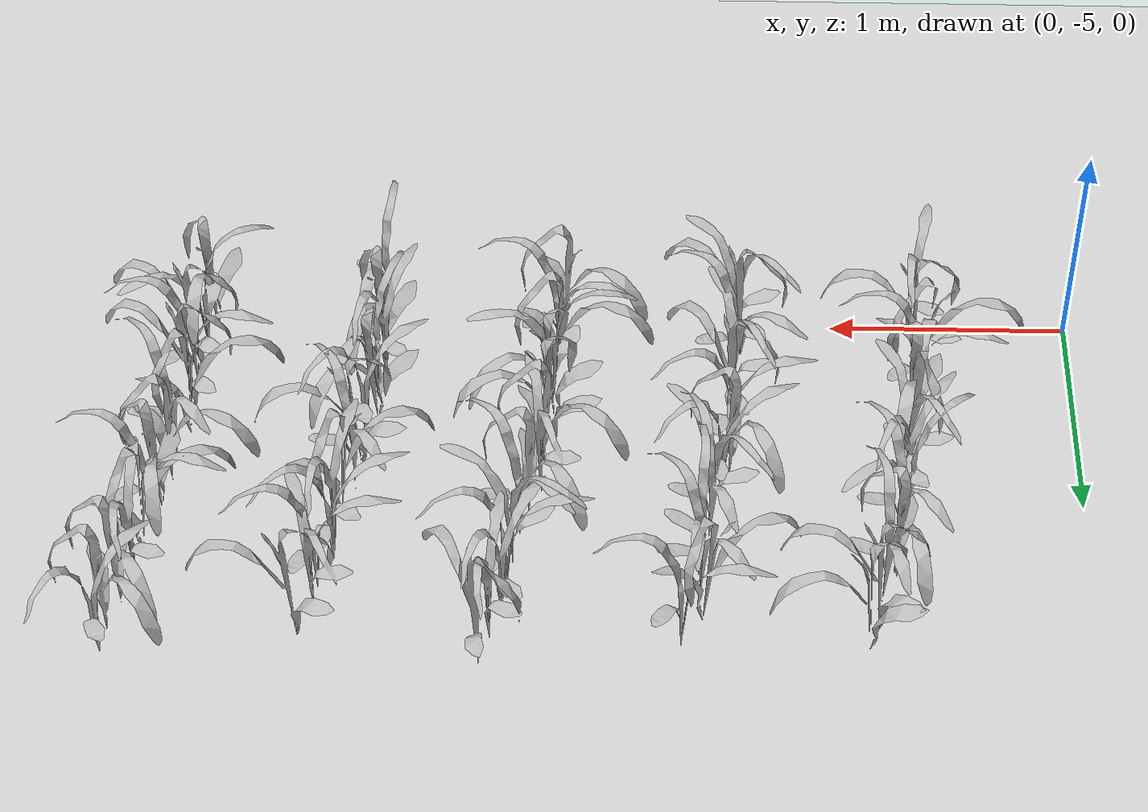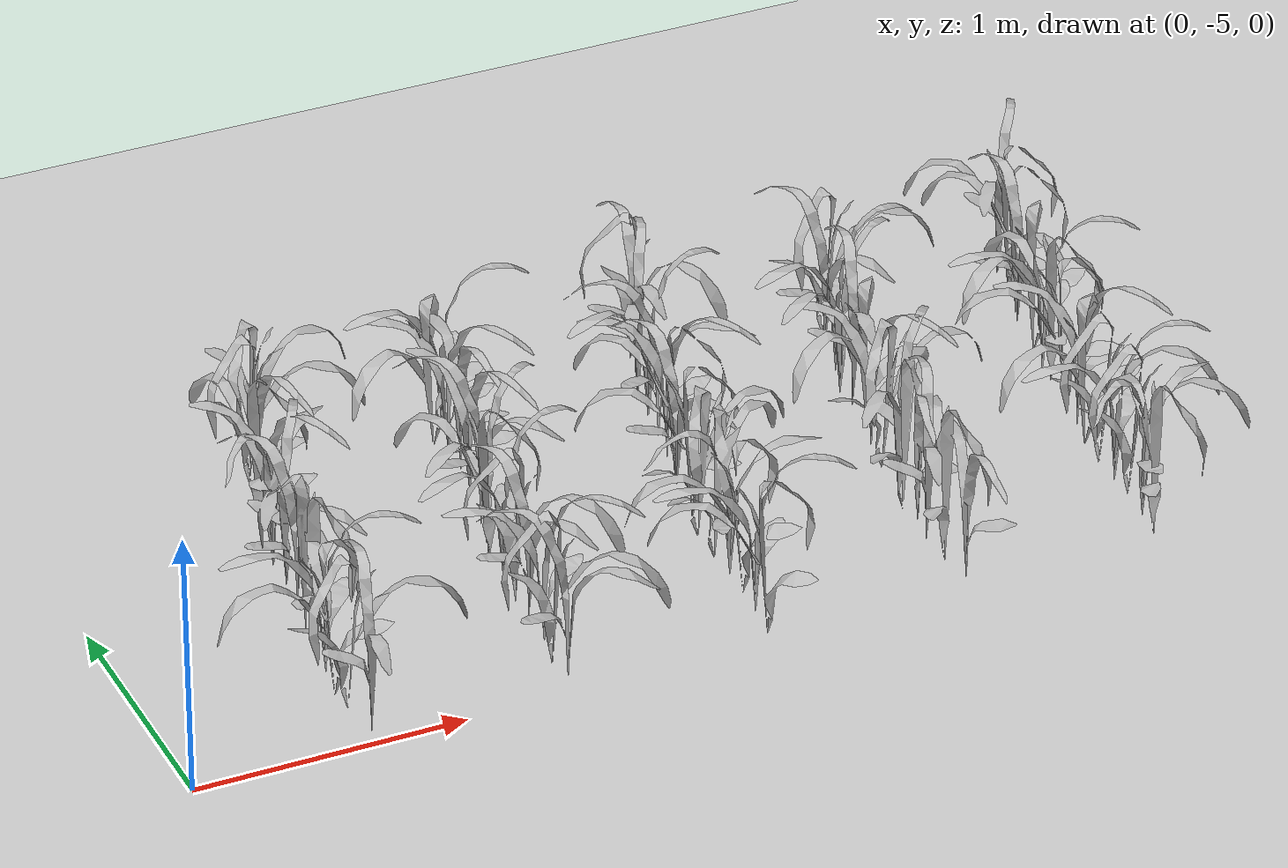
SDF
<sdf version="1.7">
 <world name="default">
  <model name="maize_02_0477">
   <pose>0.674474 -4.93886 1e-06 0.000156 3e-06 0.414563</pose>
   <link name="maize_02_link">
    <inertial>
     <pose>0 0 0.01 0 -0 0</pose>
     <mass>0.3</mass>
     <inertia>
      <ixx>0.00334167</ixx>
      <ixy>0</ixy>
      <ixz>0</ixz>
      <iyy>0.00334167</iyy>
      <iyz>0</iyz>
      <izz>1.66667e-05</izz>
     </inertia>
     <pose>0 0 0.1 0 -0 0</pose>
    </inertial>
    <visual name="visual">
     <geometry>
      <mesh><uri>model://maize_02/meshes/maize_02.dae</uri><scale>0.683166 0.683166 0.683166</scale></mesh>
     </geometry>
    </visual>
   </link>
   <static>0</static>
  </model>
  <model name="maize_01_0478">
   <pose>0.653253 -4.77808 -0 2.8e-05 5e-06 0.561854</pose>
   <link name="maize_01_link">
    <inertial>
     <pose>0 0 0.01 0 -0 0</pose>
     <mass>0.3</mass>
     <inertia>
      <ixx>0.00334167</ixx>
      <ixy>0</ixy>
      <ixz>0</ixz>
      <iyy>0.00334167</iyy>
      <iyz>0</iyz>
      <izz>1.66667e-05</izz>
     </inertia>
     <pose>0 0 0.1 0 -0 0</pose>
    </inertial>
    <visual name="visual">
     <geometry>
      <mesh><uri>model://maize_01/meshes/maize_01.dae</uri><scale>0.683166 0.683166 0.683166</scale></mesh>
     </geometry>
    </visual>
   </link>
   <static>0</static>
  </model>
  <model name="maize_01_0479">
   <pose>0.643552 -4.68192 -1e-06 -7.9e-05 6e-06 -2.36254</pose>
   <link name="maize_01_link">
    <inertial>
     <pose>0 0 0.01 0 -0 0</pose>
     <mass>0.3</mass>
     <inertia>
      <ixx>0.00334167</ixx>
      <ixy>0</ixy>
      <ixz>0</ixz>
      <iyy>0.00334167</iyy>
      <iyz>0</iyz>
      <izz>1.66667e-05</izz>
     </inertia>
     <pose>0 0 0.1 0 -0 0</pose>
    </inertial>
    <visual name="visual">
     <geometry>
      <mesh><uri>model://maize_01/meshes/maize_01.dae</uri><scale>0.683166 0.683166 0.683166</scale></mesh>
     </geometry>
    </visual>
   </link>
   <static>0</static>
  </model>
  <model name="maize_02_0480">
   <pose>0.665992 -4.54618 -0 -6e-06 -4.8e-05 -1.18139</pose>
   <link name="maize_02_link">
    <inertial>
     <pose>0 0 0.01 0 -0 0</pose>
     <mass>0.3</mass>
     <inertia>
      <ixx>0.00334167</ixx>
      <ixy>0</ixy>
      <ixz>0</ixz>
      <iyy>0.00334167</iyy>
      <iyz>0</iyz>
      <izz>1.66667e-05</izz>
     </inertia>
     <pose>0 0 0.1 0 -0 0</pose>
    </inertial>
    <visual name="visual">
     <geometry>
      <mesh><uri>model://maize_02/meshes/maize_02.dae</uri><scale>0.683166 0.683166 0.683166</scale></mesh>
     </geometry>
    </visual>
   </link>
   <static>0</static>
  </model>
  <model name="maize_01_0481">
   <pose>0.697818 -4.39922 -0 -5e-06 2.8e-05 2.16191</pose>
   <link name="maize_01_link">
    <inertial>
     <pose>0 0 0.01 0 -0 0</pose>
     <mass>0.3</mass>
     <inertia>
      <ixx>0.00334167</ixx>
      <ixy>0</ixy>
      <ixz>0</ixz>
      <iyy>0.00334167</iyy>
      <iyz>0</iyz>
      <izz>1.66667e-05</izz>
     </inertia>
     <pose>0 0 0.1 0 -0 0</pose>
    </inertial>
    <visual name="visual">
     <geometry>
      <mesh><uri>model://maize_01/meshes/maize_01.dae</uri><scale>0.683166 0.683166 0.683166</scale></mesh>
     </geometry>
    </visual>
   </link>
   <static>0</static>
  </model>
  <model name="maize_01_0482">
   <pose>0.701762 -4.27198 -0.000245 1.4e-05 1.2e-05 -0.983457</pose>
   <link name="maize_01_link">
    <inertial>
     <pose>0 0 0.01 0 -0 0</pose>
     <mass>0.3</mass>
     <inertia>
      <ixx>0.00334167</ixx>
      <ixy>0</ixy>
      <ixz>0</ixz>
      <iyy>0.00334167</iyy>
      <iyz>0</iyz>
      <izz>1.66667e-05</izz>
     </inertia>
     <pose>0 0 0.1 0 -0 0</pose>
    </inertial>
    <visual name="visual">
     <geometry>
      <mesh><uri>model://maize_01/meshes/maize_01.dae</uri><scale>0.683166 0.683166 0.683166</scale></mesh>
     </geometry>
    </visual>
   </link>
   <static>0</static>
  </model>
  <model name="maize_02_0483">
   <pose>0.72421 -4.1486 -1e-06 8.9e-05 -6e-06 1.00061</pose>
   <link name="maize_02_link">
    <inertial>
     <pose>0 0 0.01 0 -0 0</pose>
     <mass>0.3</mass>
     <inertia>
      <ixx>0.00334167</ixx>
      <ixy>0</ixy>
      <ixz>0</ixz>
      <iyy>0.00334167</iyy>
      <iyz>0</iyz>
      <izz>1.66667e-05</izz>
     </inertia>
     <pose>0 0 0.1 0 -0 0</pose>
    </inertial>
    <visual name="visual">
     <geometry>
      <mesh><uri>model://maize_02/meshes/maize_02.dae</uri><scale>0.683166 0.683166 0.683166</scale></mesh>
     </geometry>
    </visual>
   </link>
   <static>0</static>
  </model>
  <model name="maize_02_0484">
   <pose>0.740142 -4.005 -0.000245 -1.2e-05 -1.4e-05 0.047319</pose>
   <link name="maize_02_link">
    <inertial>
     <pose>0 0 0.01 0 -0 0</pose>
     <mass>0.3</mass>
     <inertia>
      <ixx>0.00334167</ixx>
      <ixy>0</ixy>
      <ixz>0</ixz>
      <iyy>0.00334167</iyy>
      <iyz>0</iyz>
      <izz>1.66667e-05</izz>
     </inertia>
     <pose>0 0 0.1 0 -0 0</pose>
    </inertial>
    <visual name="visual">
     <geometry>
      <mesh><uri>model://maize_02/meshes/maize_02.dae</uri><scale>0.683166 0.683166 0.683166</scale></mesh>
     </geometry>
    </visual>
   </link>
   <static>0</static>
  </model>
  <model name="maize_02_0485">
   <pose>0.747162 -3.86561 -0.000245 1.2e-05 1.4e-05 2.84038</pose>
   <link name="maize_02_link">
    <inertial>
     <pose>0 0 0.01 0 -0 0</pose>
     <mass>0.3</mass>
     <inertia>
      <ixx>0.00334167</ixx>
      <ixy>0</ixy>
      <ixz>0</ixz>
      <iyy>0.00334167</iyy>
      <iyz>0</iyz>
      <izz>1.66667e-05</izz>
     </inertia>
     <pose>0 0 0.1 0 -0 0</pose>
    </inertial>
    <visual name="visual">
     <geometry>
      <mesh><uri>model://maize_02/meshes/maize_02.dae</uri><scale>0.683166 0.683166 0.683166</scale></mesh>
     </geometry>
    </visual>
   </link>
   <static>0</static>
  </model>
  <model name="maize_02_0486">
   <pose>0.775712 -3.76339 -1e-06 6e-06 -7.9e-05 -2.0413</pose>
   <link name="maize_02_link">
    <inertial>
     <pose>0 0 0.01 0 -0 0</pose>
     <mass>0.3</mass>
     <inertia>
      <ixx>0.00334167</ixx>
      <ixy>0</ixy>
      <ixz>0</ixz>
      <iyy>0.00334167</iyy>
      <iyz>0</iyz>
      <izz>1.66667e-05</izz>
     </inertia>
     <pose>0 0 0.1 0 -0 0</pose>
    </inertial>
    <visual name="visual">
     <geometry>
      <mesh><uri>model://maize_02/meshes/maize_02.dae</uri><scale>0.683166 0.683166 0.683166</scale></mesh>
     </geometry>
    </visual>
   </link>
   <static>0</static>
  </model>
  <model name="maize_01_0487">
   <pose>0.795317 -3.62238 -0.000245 -1.2e-05 1.4e-05 2.55665</pose>
   <link name="maize_01_link">
    <inertial>
     <pose>0 0 0.01 0 -0 0</pose>
     <mass>0.3</mass>
     <inertia>
      <ixx>0.00334167</ixx>
      <ixy>0</ixy>
      <ixz>0</ixz>
      <iyy>0.00334167</iyy>
      <iyz>0</iyz>
      <izz>1.66667e-05</izz>
     </inertia>
     <pose>0 0 0.1 0 -0 0</pose>
    </inertial>
    <visual name="visual">
     <geometry>
      <mesh><uri>model://maize_01/meshes/maize_01.dae</uri><scale>0.683166 0.683166 0.683166</scale></mesh>
     </geometry>
    </visual>
   </link>
   <static>0</static>
  </model>
  <model name="maize_02_0488">
   <pose>0.847008 -3.48248 -0 4.8e-05 6e-06 -2.38015</pose>
   <link name="maize_02_link">
    <inertial>
     <pose>0 0 0.01 0 -0 0</pose>
     <mass>0.3</mass>
     <inertia>
      <ixx>0.00334167</ixx>
      <ixy>0</ixy>
      <ixz>0</ixz>
      <iyy>0.00334167</iyy>
      <iyz>0</iyz>
      <izz>1.66667e-05</izz>
     </inertia>
     <pose>0 0 0.1 0 -0 0</pose>
    </inertial>
    <visual name="visual">
     <geometry>
      <mesh><uri>model://maize_02/meshes/maize_02.dae</uri><scale>0.683166 0.683166 0.683166</scale></mesh>
     </geometry>
    </visual>
   </link>
   <static>0</static>
  </model>
  <model name="maize_01_0489">
   <pose>0.866698 -3.34119 -0 -2.8e-05 -5e-06 0.440637</pose>
   <link name="maize_01_link">
    <inertial>
     <pose>0 0 0.01 0 -0 0</pose>
     <mass>0.3</mass>
     <inertia>
      <ixx>0.00334167</ixx>
      <ixy>0</ixy>
      <ixz>0</ixz>
      <iyy>0.00334167</iyy>
      <iyz>0</iyz>
      <izz>1.66667e-05</izz>
     </inertia>
     <pose>0 0 0.1 0 -0 0</pose>
    </inertial>
    <visual name="visual">
     <geometry>
      <mesh><uri>model://maize_01/meshes/maize_01.dae</uri><scale>0.683166 0.683166 0.683166</scale></mesh>
     </geometry>
    </visual>
   </link>
   <static>0</static>
  </model>
  <model name="maize_01_0490">
   <pose>0.905748 -3.24351 -0 2.8e-05 -5e-06 0.993641</pose>
   <link name="maize_01_link">
    <inertial>
     <pose>0 0 0.01 0 -0 0</pose>
     <mass>0.3</mass>
     <inertia>
      <ixx>0.00334167</ixx>
      <ixy>0</ixy>
      <ixz>0</ixz>
      <iyy>0.00334167</iyy>
      <iyz>0</iyz>
      <izz>1.66667e-05</izz>
     </inertia>
     <pose>0 0 0.1 0 -0 0</pose>
    </inertial>
    <visual name="visual">
     <geometry>
      <mesh><uri>model://maize_01/meshes/maize_01.dae</uri><scale>0.683166 0.683166 0.683166</scale></mesh>
     </geometry>
    </visual>
   </link>
   <static>0</static>
  </model>
  <model name="maize_02_0553">
   <pose>1.41033 -4.91577 -0.000245 -1.2e-05 -1.4e-05 1.29255</pose>
   <link name="maize_02_link">
    <inertial>
     <pose>0 0 0.01 0 -0 0</pose>
     <mass>0.3</mass>
     <inertia>
      <ixx>0.00334167</ixx>
      <ixy>0</ixy>
      <ixz>0</ixz>
      <iyy>0.00334167</iyy>
      <iyz>0</iyz>
      <izz>1.66667e-05</izz>
     </inertia>
     <pose>0 0 0.1 0 -0 0</pose>
    </inertial>
    <visual name="visual">
     <geometry>
      <mesh><uri>model://maize_02/meshes/maize_02.dae</uri><scale>0.683166 0.683166 0.683166</scale></mesh>
     </geometry>
    </visual>
   </link>
   <static>0</static>
  </model>
  <model name="maize_01_0554">
   <pose>1.39166 -4.82205 -1e-06 6e-06 -7.9e-05 0.08808</pose>
   <link name="maize_01_link">
    <inertial>
     <pose>0 0 0.01 0 -0 0</pose>
     <mass>0.3</mass>
     <inertia>
      <ixx>0.00334167</ixx>
      <ixy>0</ixy>
      <ixz>0</ixz>
      <iyy>0.00334167</iyy>
      <iyz>0</iyz>
      <izz>1.66667e-05</izz>
     </inertia>
     <pose>0 0 0.1 0 -0 0</pose>
    </inertial>
    <visual name="visual">
     <geometry>
      <mesh><uri>model://maize_01/meshes/maize_01.dae</uri><scale>0.683166 0.683166 0.683166</scale></mesh>
     </geometry>
    </visual>
   </link>
   <static>0</static>
  </model>
  <model name="maize_02_0555">
   <pose>1.42139 -4.68467 1e-06 -0.000156 3e-06 -1.60338</pose>
   <link name="maize_02_link">
    <inertial>
     <pose>0 0 0.01 0 -0 0</pose>
     <mass>0.3</mass>
     <inertia>
      <ixx>0.00334167</ixx>
      <ixy>0</ixy>
      <ixz>0</ixz>
      <iyy>0.00334167</iyy>
      <iyz>0</iyz>
      <izz>1.66667e-05</izz>
     </inertia>
     <pose>0 0 0.1 0 -0 0</pose>
    </inertial>
    <visual name="visual">
     <geometry>
      <mesh><uri>model://maize_02/meshes/maize_02.dae</uri><scale>0.683166 0.683166 0.683166</scale></mesh>
     </geometry>
    </visual>
   </link>
   <static>0</static>
  </model>
  <model name="maize_02_0556">
   <pose>1.42359 -4.54949 -0.000245 1.2e-05 -1.4e-05 0.94252</pose>
   <link name="maize_02_link">
    <inertial>
     <pose>0 0 0.01 0 -0 0</pose>
     <mass>0.3</mass>
     <inertia>
      <ixx>0.00334167</ixx>
      <ixy>0</ixy>
      <ixz>0</ixz>
      <iyy>0.00334167</iyy>
      <iyz>0</iyz>
      <izz>1.66667e-05</izz>
     </inertia>
     <pose>0 0 0.1 0 -0 0</pose>
    </inertial>
    <visual name="visual">
     <geometry>
      <mesh><uri>model://maize_02/meshes/maize_02.dae</uri><scale>0.683166 0.683166 0.683166</scale></mesh>
     </geometry>
    </visual>
   </link>
   <static>0</static>
  </model>
  <model name="maize_01_0557">
   <pose>1.4328 -4.40872 -0 4.8e-05 6e-06 -0.097892</pose>
   <link name="maize_01_link">
    <inertial>
     <pose>0 0 0.01 0 -0 0</pose>
     <mass>0.3</mass>
     <inertia>
      <ixx>0.00334167</ixx>
      <ixy>0</ixy>
      <ixz>0</ixz>
      <iyy>0.00334167</iyy>
      <iyz>0</iyz>
      <izz>1.66667e-05</izz>
     </inertia>
     <pose>0 0 0.1 0 -0 0</pose>
    </inertial>
    <visual name="visual">
     <geometry>
      <mesh><uri>model://maize_01/meshes/maize_01.dae</uri><scale>0.683166 0.683166 0.683166</scale></mesh>
     </geometry>
    </visual>
   </link>
   <static>0</static>
  </model>
  <model name="maize_02_0558">
   <pose>1.44701 -4.27184 -0 -5e-06 -2.8e-05 -0.721657</pose>
   <link name="maize_02_link">
    <inertial>
     <pose>0 0 0.01 0 -0 0</pose>
     <mass>0.3</mass>
     <inertia>
      <ixx>0.00334167</ixx>
      <ixy>0</ixy>
      <ixz>0</ixz>
      <iyy>0.00334167</iyy>
      <iyz>0</iyz>
      <izz>1.66667e-05</izz>
     </inertia>
     <pose>0 0 0.1 0 -0 0</pose>
    </inertial>
    <visual name="visual">
     <geometry>
      <mesh><uri>model://maize_02/meshes/maize_02.dae</uri><scale>0.683166 0.683166 0.683166</scale></mesh>
     </geometry>
    </visual>
   </link>
   <static>0</static>
  </model>
  <model name="maize_01_0559">
   <pose>1.44878 -4.14424 -0 -5e-06 -2.8e-05 2.8264</pose>
   <link name="maize_01_link">
    <inertial>
     <pose>0 0 0.01 0 -0 0</pose>
     <mass>0.3</mass>
     <inertia>
      <ixx>0.00334167</ixx>
      <ixy>0</ixy>
      <ixz>0</ixz>
      <iyy>0.00334167</iyy>
      <iyz>0</iyz>
      <izz>1.66667e-05</izz>
     </inertia>
     <pose>0 0 0.1 0 -0 0</pose>
    </inertial>
    <visual name="visual">
     <geometry>
      <mesh><uri>model://maize_01/meshes/maize_01.dae</uri><scale>0.683166 0.683166 0.683166</scale></mesh>
     </geometry>
    </visual>
   </link>
   <static>0</static>
  </model>
  <model name="maize_02_0560">
   <pose>1.48439 -4.03533 -1e-06 8.6e-05 -6e-06 -0.397903</pose>
   <link name="maize_02_link">
    <inertial>
     <pose>0 0 0.01 0 -0 0</pose>
     <mass>0.3</mass>
     <inertia>
      <ixx>0.00334167</ixx>
      <ixy>0</ixy>
      <ixz>0</ixz>
      <iyy>0.00334167</iyy>
      <iyz>0</iyz>
      <izz>1.66667e-05</izz>
     </inertia>
     <pose>0 0 0.1 0 -0 0</pose>
    </inertial>
    <visual name="visual">
     <geometry>
      <mesh><uri>model://maize_02/meshes/maize_02.dae</uri><scale>0.683166 0.683166 0.683166</scale></mesh>
     </geometry>
    </visual>
   </link>
   <static>0</static>
  </model>
  <model name="maize_02_0561">
   <pose>1.51667 -3.91169 -0.000245 1.2e-05 1.4e-05 1.19122</pose>
   <link name="maize_02_link">
    <inertial>
     <pose>0 0 0.01 0 -0 0</pose>
     <mass>0.3</mass>
     <inertia>
      <ixx>0.00334167</ixx>
      <ixy>0</ixy>
      <ixz>0</ixz>
      <iyy>0.00334167</iyy>
      <iyz>0</iyz>
      <izz>1.66667e-05</izz>
     </inertia>
     <pose>0 0 0.1 0 -0 0</pose>
    </inertial>
    <visual name="visual">
     <geometry>
      <mesh><uri>model://maize_02/meshes/maize_02.dae</uri><scale>0.683166 0.683166 0.683166</scale></mesh>
     </geometry>
    </visual>
   </link>
   <static>0</static>
  </model>
  <model name="maize_02_0562">
   <pose>1.53531 -3.76983 -0 -2.8e-05 -5e-06 -2.25708</pose>
   <link name="maize_02_link">
    <inertial>
     <pose>0 0 0.01 0 -0 0</pose>
     <mass>0.3</mass>
     <inertia>
      <ixx>0.00334167</ixx>
      <ixy>0</ixy>
      <ixz>0</ixz>
      <iyy>0.00334167</iyy>
      <iyz>0</iyz>
      <izz>1.66667e-05</izz>
     </inertia>
     <pose>0 0 0.1 0 -0 0</pose>
    </inertial>
    <visual name="visual">
     <geometry>
      <mesh><uri>model://maize_02/meshes/maize_02.dae</uri><scale>0.683166 0.683166 0.683166</scale></mesh>
     </geometry>
    </visual>
   </link>
   <static>0</static>
  </model>
  <model name="maize_02_0563">
   <pose>1.57684 -3.58956 1e-06 -3e-06 0.000156 -2.57772</pose>
   <link name="maize_02_link">
    <inertial>
     <pose>0 0 0.01 0 -0 0</pose>
     <mass>0.3</mass>
     <inertia>
      <ixx>0.00334167</ixx>
      <ixy>0</ixy>
      <ixz>0</ixz>
      <iyy>0.00334167</iyy>
      <iyz>0</iyz>
      <izz>1.66667e-05</izz>
     </inertia>
     <pose>0 0 0.1 0 -0 0</pose>
    </inertial>
    <visual name="visual">
     <geometry>
      <mesh><uri>model://maize_02/meshes/maize_02.dae</uri><scale>0.683166 0.683166 0.683166</scale></mesh>
     </geometry>
    </visual>
   </link>
   <static>0</static>
  </model>
  <model name="maize_02_0564">
   <pose>1.57098 -3.48957 -1e-06 8.9e-05 6e-06 -1.94327</pose>
   <link name="maize_02_link">
    <inertial>
     <pose>0 0 0.01 0 -0 0</pose>
     <mass>0.3</mass>
     <inertia>
      <ixx>0.00334167</ixx>
      <ixy>0</ixy>
      <ixz>0</ixz>
      <iyy>0.00334167</iyy>
      <iyz>0</iyz>
      <izz>1.66667e-05</izz>
     </inertia>
     <pose>0 0 0.1 0 -0 0</pose>
    </inertial>
    <visual name="visual">
     <geometry>
      <mesh><uri>model://maize_02/meshes/maize_02.dae</uri><scale>0.683166 0.683166 0.683166</scale></mesh>
     </geometry>
    </visual>
   </link>
   <static>0</static>
  </model>
  <model name="maize_01_0565">
   <pose>1.56012 -3.37083 1e-06 -0.000156 3e-06 -1.91143</pose>
   <link name="maize_01_link">
    <inertial>
     <pose>0 0 0.01 0 -0 0</pose>
     <mass>0.3</mass>
     <inertia>
      <ixx>0.00334167</ixx>
      <ixy>0</ixy>
      <ixz>0</ixz>
      <iyy>0.00334167</iyy>
      <iyz>0</iyz>
      <izz>1.66667e-05</izz>
     </inertia>
     <pose>0 0 0.1 0 -0 0</pose>
    </inertial>
    <visual name="visual">
     <geometry>
      <mesh><uri>model://maize_01/meshes/maize_01.dae</uri><scale>0.683166 0.683166 0.683166</scale></mesh>
     </geometry>
    </visual>
   </link>
   <static>0</static>
  </model>
  <model name="maize_02_0566">
   <pose>1.64632 -3.24636 -0 -2.8e-05 5e-06 -1.04931</pose>
   <link name="maize_02_link">
    <inertial>
     <pose>0 0 0.01 0 -0 0</pose>
     <mass>0.3</mass>
     <inertia>
      <ixx>0.00334167</ixx>
      <ixy>0</ixy>
      <ixz>0</ixz>
      <iyy>0.00334167</iyy>
      <iyz>0</iyz>
      <izz>1.66667e-05</izz>
     </inertia>
     <pose>0 0 0.1 0 -0 0</pose>
    </inertial>
    <visual name="visual">
     <geometry>
      <mesh><uri>model://maize_02/meshes/maize_02.dae</uri><scale>0.683166 0.683166 0.683166</scale></mesh>
     </geometry>
    </visual>
   </link>
   <static>0</static>
  </model>
  <model name="maize_01_0630">
   <pose>2.14575 -4.94964 -0 -5e-06 -2.8e-05 -2.95727</pose>
   <link name="maize_01_link">
    <inertial>
     <pose>0 0 0.01 0 -0 0</pose>
     <mass>0.3</mass>
     <inertia>
      <ixx>0.00334167</ixx>
      <ixy>0</ixy>
      <ixz>0</ixz>
      <iyy>0.00334167</iyy>
      <iyz>0</iyz>
      <izz>1.66667e-05</izz>
     </inertia>
     <pose>0 0 0.1 0 -0 0</pose>
    </inertial>
    <visual name="visual">
     <geometry>
      <mesh><uri>model://maize_01/meshes/maize_01.dae</uri><scale>0.683166 0.683166 0.683166</scale></mesh>
     </geometry>
    </visual>
   </link>
   <static>0</static>
  </model>
  <model name="maize_02_0631">
   <pose>2.16774 -4.80443 -0 5e-06 -2.8e-05 -1.30454</pose>
   <link name="maize_02_link">
    <inertial>
     <pose>0 0 0.01 0 -0 0</pose>
     <mass>0.3</mass>
     <inertia>
      <ixx>0.00334167</ixx>
      <ixy>0</ixy>
      <ixz>0</ixz>
      <iyy>0.00334167</iyy>
      <iyz>0</iyz>
      <izz>1.66667e-05</izz>
     </inertia>
     <pose>0 0 0.1 0 -0 0</pose>
    </inertial>
    <visual name="visual">
     <geometry>
      <mesh><uri>model://maize_02/meshes/maize_02.dae</uri><scale>0.683166 0.683166 0.683166</scale></mesh>
     </geometry>
    </visual>
   </link>
   <static>0</static>
  </model>
  <model name="maize_01_0632">
   <pose>2.17604 -4.68105 1e-06 3e-06 0.000156 -2.59515</pose>
   <link name="maize_01_link">
    <inertial>
     <pose>0 0 0.01 0 -0 0</pose>
     <mass>0.3</mass>
     <inertia>
      <ixx>0.00334167</ixx>
      <ixy>0</ixy>
      <ixz>0</ixz>
      <iyy>0.00334167</iyy>
      <iyz>0</iyz>
      <izz>1.66667e-05</izz>
     </inertia>
     <pose>0 0 0.1 0 -0 0</pose>
    </inertial>
    <visual name="visual">
     <geometry>
      <mesh><uri>model://maize_01/meshes/maize_01.dae</uri><scale>0.683166 0.683166 0.683166</scale></mesh>
     </geometry>
    </visual>
   </link>
   <static>0</static>
  </model>
  <model name="maize_02_0633">
   <pose>2.18135 -4.56433 -0 2.8e-05 5e-06 2.21011</pose>
   <link name="maize_02_link">
    <inertial>
     <pose>0 0 0.01 0 -0 0</pose>
     <mass>0.3</mass>
     <inertia>
      <ixx>0.00334167</ixx>
      <ixy>0</ixy>
      <ixz>0</ixz>
      <iyy>0.00334167</iyy>
      <iyz>0</iyz>
      <izz>1.66667e-05</izz>
     </inertia>
     <pose>0 0 0.1 0 -0 0</pose>
    </inertial>
    <visual name="visual">
     <geometry>
      <mesh><uri>model://maize_02/meshes/maize_02.dae</uri><scale>0.683166 0.683166 0.683166</scale></mesh>
     </geometry>
    </visual>
   </link>
   <static>0</static>
  </model>
  <model name="maize_01_0634">
   <pose>2.17701 -4.44766 -0 2.8e-05 5e-06 1.41967</pose>
   <link name="maize_01_link">
    <inertial>
     <pose>0 0 0.01 0 -0 0</pose>
     <mass>0.3</mass>
     <inertia>
      <ixx>0.00334167</ixx>
      <ixy>0</ixy>
      <ixz>0</ixz>
      <iyy>0.00334167</iyy>
      <iyz>0</iyz>
      <izz>1.66667e-05</izz>
     </inertia>
     <pose>0 0 0.1 0 -0 0</pose>
    </inertial>
    <visual name="visual">
     <geometry>
      <mesh><uri>model://maize_01/meshes/maize_01.dae</uri><scale>0.683166 0.683166 0.683166</scale></mesh>
     </geometry>
    </visual>
   </link>
   <static>0</static>
  </model>
  <model name="maize_01_0635">
   <pose>2.18182 -4.29631 -0 -2.8e-05 -5e-06 1.12661</pose>
   <link name="maize_01_link">
    <inertial>
     <pose>0 0 0.01 0 -0 0</pose>
     <mass>0.3</mass>
     <inertia>
      <ixx>0.00334167</ixx>
      <ixy>0</ixy>
      <ixz>0</ixz>
      <iyy>0.00334167</iyy>
      <iyz>0</iyz>
      <izz>1.66667e-05</izz>
     </inertia>
     <pose>0 0 0.1 0 -0 0</pose>
    </inertial>
    <visual name="visual">
     <geometry>
      <mesh><uri>model://maize_01/meshes/maize_01.dae</uri><scale>0.683166 0.683166 0.683166</scale></mesh>
     </geometry>
    </visual>
   </link>
   <static>0</static>
  </model>
  <model name="maize_01_0636">
   <pose>2.21421 -4.17356 -0.000245 1.4e-05 -1.2e-05 -2.96115</pose>
   <link name="maize_01_link">
    <inertial>
     <pose>0 0 0.01 0 -0 0</pose>
     <mass>0.3</mass>
     <inertia>
      <ixx>0.00334167</ixx>
      <ixy>0</ixy>
      <ixz>0</ixz>
      <iyy>0.00334167</iyy>
      <iyz>0</iyz>
      <izz>1.66667e-05</izz>
     </inertia>
     <pose>0 0 0.1 0 -0 0</pose>
    </inertial>
    <visual name="visual">
     <geometry>
      <mesh><uri>model://maize_01/meshes/maize_01.dae</uri><scale>0.683166 0.683166 0.683166</scale></mesh>
     </geometry>
    </visual>
   </link>
   <static>0</static>
  </model>
  <model name="maize_02_0637">
   <pose>2.21722 -4.03189 -1e-06 6e-06 -8.6e-05 0.806148</pose>
   <link name="maize_02_link">
    <inertial>
     <pose>0 0 0.01 0 -0 0</pose>
     <mass>0.3</mass>
     <inertia>
      <ixx>0.00334167</ixx>
      <ixy>0</ixy>
      <ixz>0</ixz>
      <iyy>0.00334167</iyy>
      <iyz>0</iyz>
      <izz>1.66667e-05</izz>
     </inertia>
     <pose>0 0 0.1 0 -0 0</pose>
    </inertial>
    <visual name="visual">
     <geometry>
      <mesh><uri>model://maize_02/meshes/maize_02.dae</uri><scale>0.683166 0.683166 0.683166</scale></mesh>
     </geometry>
    </visual>
   </link>
   <static>0</static>
  </model>
  <model name="maize_01_0638">
   <pose>2.26728 -3.9102 -0.000245 -1.2e-05 -1.4e-05 2.94388</pose>
   <link name="maize_01_link">
    <inertial>
     <pose>0 0 0.01 0 -0 0</pose>
     <mass>0.3</mass>
     <inertia>
      <ixx>0.00334167</ixx>
      <ixy>0</ixy>
      <ixz>0</ixz>
      <iyy>0.00334167</iyy>
      <iyz>0</iyz>
      <izz>1.66667e-05</izz>
     </inertia>
     <pose>0 0 0.1 0 -0 0</pose>
    </inertial>
    <visual name="visual">
     <geometry>
      <mesh><uri>model://maize_01/meshes/maize_01.dae</uri><scale>0.683166 0.683166 0.683166</scale></mesh>
     </geometry>
    </visual>
   </link>
   <static>0</static>
  </model>
  <model name="maize_02_0639">
   <pose>2.29607 -3.77886 -1e-06 8.9e-05 -6e-06 -1.82809</pose>
   <link name="maize_02_link">
    <inertial>
     <pose>0 0 0.01 0 -0 0</pose>
     <mass>0.3</mass>
     <inertia>
      <ixx>0.00334167</ixx>
      <ixy>0</ixy>
      <ixz>0</ixz>
      <iyy>0.00334167</iyy>
      <iyz>0</iyz>
      <izz>1.66667e-05</izz>
     </inertia>
     <pose>0 0 0.1 0 -0 0</pose>
    </inertial>
    <visual name="visual">
     <geometry>
      <mesh><uri>model://maize_02/meshes/maize_02.dae</uri><scale>0.683166 0.683166 0.683166</scale></mesh>
     </geometry>
    </visual>
   </link>
   <static>0</static>
  </model>
  <model name="maize_02_0640">
   <pose>2.32136 -3.64787 -1e-06 8.3e-05 6e-06 1.55789</pose>
   <link name="maize_02_link">
    <inertial>
     <pose>0 0 0.01 0 -0 0</pose>
     <mass>0.3</mass>
     <inertia>
      <ixx>0.00334167</ixx>
      <ixy>0</ixy>
      <ixz>0</ixz>
      <iyy>0.00334167</iyy>
      <iyz>0</iyz>
      <izz>1.66667e-05</izz>
     </inertia>
     <pose>0 0 0.1 0 -0 0</pose>
    </inertial>
    <visual name="visual">
     <geometry>
      <mesh><uri>model://maize_02/meshes/maize_02.dae</uri><scale>0.683166 0.683166 0.683166</scale></mesh>
     </geometry>
    </visual>
   </link>
   <static>0</static>
  </model>
  <model name="maize_02_0641">
   <pose>2.34013 -3.51444 -1e-06 8.9e-05 6e-06 -0.739117</pose>
   <link name="maize_02_link">
    <inertial>
     <pose>0 0 0.01 0 -0 0</pose>
     <mass>0.3</mass>
     <inertia>
      <ixx>0.00334167</ixx>
      <ixy>0</ixy>
      <ixz>0</ixz>
      <iyy>0.00334167</iyy>
      <iyz>0</iyz>
      <izz>1.66667e-05</izz>
     </inertia>
     <pose>0 0 0.1 0 -0 0</pose>
    </inertial>
    <visual name="visual">
     <geometry>
      <mesh><uri>model://maize_02/meshes/maize_02.dae</uri><scale>0.683166 0.683166 0.683166</scale></mesh>
     </geometry>
    </visual>
   </link>
   <static>0</static>
  </model>
  <model name="maize_02_0642">
   <pose>2.35495 -3.38844 -0.000245 1.4e-05 1.2e-05 0.138348</pose>
   <link name="maize_02_link">
    <inertial>
     <pose>0 0 0.01 0 -0 0</pose>
     <mass>0.3</mass>
     <inertia>
      <ixx>0.00334167</ixx>
      <ixy>0</ixy>
      <ixz>0</ixz>
      <iyy>0.00334167</iyy>
      <iyz>0</iyz>
      <izz>1.66667e-05</izz>
     </inertia>
     <pose>0 0 0.1 0 -0 0</pose>
    </inertial>
    <visual name="visual">
     <geometry>
      <mesh><uri>model://maize_02/meshes/maize_02.dae</uri><scale>0.683166 0.683166 0.683166</scale></mesh>
     </geometry>
    </visual>
   </link>
   <static>0</static>
  </model>
  <model name="maize_02_0643">
   <pose>2.39913 -3.26796 -0 -2.8e-05 -5e-06 0.502346</pose>
   <link name="maize_02_link">
    <inertial>
     <pose>0 0 0.01 0 -0 0</pose>
     <mass>0.3</mass>
     <inertia>
      <ixx>0.00334167</ixx>
      <ixy>0</ixy>
      <ixz>0</ixz>
      <iyy>0.00334167</iyy>
      <iyz>0</iyz>
      <izz>1.66667e-05</izz>
     </inertia>
     <pose>0 0 0.1 0 -0 0</pose>
    </inertial>
    <visual name="visual">
     <geometry>
      <mesh><uri>model://maize_02/meshes/maize_02.dae</uri><scale>0.683166 0.683166 0.683166</scale></mesh>
     </geometry>
    </visual>
   </link>
   <static>0</static>
  </model>
  <model name="maize_01_0644">
   <pose>2.43658 -3.14194 -0 -5e-06 -2.8e-05 -0.256459</pose>
   <link name="maize_01_link">
    <inertial>
     <pose>0 0 0.01 0 -0 0</pose>
     <mass>0.3</mass>
     <inertia>
      <ixx>0.00334167</ixx>
      <ixy>0</ixy>
      <ixz>0</ixz>
      <iyy>0.00334167</iyy>
      <iyz>0</iyz>
      <izz>1.66667e-05</izz>
     </inertia>
     <pose>0 0 0.1 0 -0 0</pose>
    </inertial>
    <visual name="visual">
     <geometry>
      <mesh><uri>model://maize_01/meshes/maize_01.dae</uri><scale>0.683166 0.683166 0.683166</scale></mesh>
     </geometry>
    </visual>
   </link>
   <static>0</static>
  </model>
  <model name="maize_02_0707">
   <pose>2.90741 -4.95503 -0 6e-06 4.8e-05 -2.70819</pose>
   <link name="maize_02_link">
    <inertial>
     <pose>0 0 0.01 0 -0 0</pose>
     <mass>0.3</mass>
     <inertia>
      <ixx>0.00334167</ixx>
      <ixy>0</ixy>
      <ixz>0</ixz>
      <iyy>0.00334167</iyy>
      <iyz>0</iyz>
      <izz>1.66667e-05</izz>
     </inertia>
     <pose>0 0 0.1 0 -0 0</pose>
    </inertial>
    <visual name="visual">
     <geometry>
      <mesh><uri>model://maize_02/meshes/maize_02.dae</uri><scale>0.683166 0.683166 0.683166</scale></mesh>
     </geometry>
    </visual>
   </link>
   <static>0</static>
  </model>
  <model name="maize_01_0708">
   <pose>2.90694 -4.79042 -0 -5e-06 -2.8e-05 2.10632</pose>
   <link name="maize_01_link">
    <inertial>
     <pose>0 0 0.01 0 -0 0</pose>
     <mass>0.3</mass>
     <inertia>
      <ixx>0.00334167</ixx>
      <ixy>0</ixy>
      <ixz>0</ixz>
      <iyy>0.00334167</iyy>
      <iyz>0</iyz>
      <izz>1.66667e-05</izz>
     </inertia>
     <pose>0 0 0.1 0 -0 0</pose>
    </inertial>
    <visual name="visual">
     <geometry>
      <mesh><uri>model://maize_01/meshes/maize_01.dae</uri><scale>0.683166 0.683166 0.683166</scale></mesh>
     </geometry>
    </visual>
   </link>
   <static>0</static>
  </model>
  <model name="maize_02_0709">
   <pose>2.89261 -4.66554 -0 -2.8e-05 5e-06 0.263927</pose>
   <link name="maize_02_link">
    <inertial>
     <pose>0 0 0.01 0 -0 0</pose>
     <mass>0.3</mass>
     <inertia>
      <ixx>0.00334167</ixx>
      <ixy>0</ixy>
      <ixz>0</ixz>
      <iyy>0.00334167</iyy>
      <iyz>0</iyz>
      <izz>1.66667e-05</izz>
     </inertia>
     <pose>0 0 0.1 0 -0 0</pose>
    </inertial>
    <visual name="visual">
     <geometry>
      <mesh><uri>model://maize_02/meshes/maize_02.dae</uri><scale>0.683166 0.683166 0.683166</scale></mesh>
     </geometry>
    </visual>
   </link>
   <static>0</static>
  </model>
  <model name="maize_02_0710">
   <pose>2.92119 -4.54074 -0 -5e-06 2.8e-05 -2.93694</pose>
   <link name="maize_02_link">
    <inertial>
     <pose>0 0 0.01 0 -0 0</pose>
     <mass>0.3</mass>
     <inertia>
      <ixx>0.00334167</ixx>
      <ixy>0</ixy>
      <ixz>0</ixz>
      <iyy>0.00334167</iyy>
      <iyz>0</iyz>
      <izz>1.66667e-05</izz>
     </inertia>
     <pose>0 0 0.1 0 -0 0</pose>
    </inertial>
    <visual name="visual">
     <geometry>
      <mesh><uri>model://maize_02/meshes/maize_02.dae</uri><scale>0.683166 0.683166 0.683166</scale></mesh>
     </geometry>
    </visual>
   </link>
   <static>0</static>
  </model>
  <model name="maize_01_0711">
   <pose>2.91695 -4.43115 -1e-06 -6e-06 8.9e-05 1.77376</pose>
   <link name="maize_01_link">
    <inertial>
     <pose>0 0 0.01 0 -0 0</pose>
     <mass>0.3</mass>
     <inertia>
      <ixx>0.00334167</ixx>
      <ixy>0</ixy>
      <ixz>0</ixz>
      <iyy>0.00334167</iyy>
      <iyz>0</iyz>
      <izz>1.66667e-05</izz>
     </inertia>
     <pose>0 0 0.1 0 -0 0</pose>
    </inertial>
    <visual name="visual">
     <geometry>
      <mesh><uri>model://maize_01/meshes/maize_01.dae</uri><scale>0.683166 0.683166 0.683166</scale></mesh>
     </geometry>
    </visual>
   </link>
   <static>0</static>
  </model>
  <model name="maize_02_0712">
   <pose>2.95335 -4.31201 -0 -5e-06 -2.8e-05 -0.198021</pose>
   <link name="maize_02_link">
    <inertial>
     <pose>0 0 0.01 0 -0 0</pose>
     <mass>0.3</mass>
     <inertia>
      <ixx>0.00334167</ixx>
      <ixy>0</ixy>
      <ixz>0</ixz>
      <iyy>0.00334167</iyy>
      <iyz>0</iyz>
      <izz>1.66667e-05</izz>
     </inertia>
     <pose>0 0 0.1 0 -0 0</pose>
    </inertial>
    <visual name="visual">
     <geometry>
      <mesh><uri>model://maize_02/meshes/maize_02.dae</uri><scale>0.683166 0.683166 0.683166</scale></mesh>
     </geometry>
    </visual>
   </link>
   <static>0</static>
  </model>
  <model name="maize_01_0713">
   <pose>2.96331 -4.16364 -1e-06 -6e-06 -8.3e-05 0.910273</pose>
   <link name="maize_01_link">
    <inertial>
     <pose>0 0 0.01 0 -0 0</pose>
     <mass>0.3</mass>
     <inertia>
      <ixx>0.00334167</ixx>
      <ixy>0</ixy>
      <ixz>0</ixz>
      <iyy>0.00334167</iyy>
      <iyz>0</iyz>
      <izz>1.66667e-05</izz>
     </inertia>
     <pose>0 0 0.1 0 -0 0</pose>
    </inertial>
    <visual name="visual">
     <geometry>
      <mesh><uri>model://maize_01/meshes/maize_01.dae</uri><scale>0.683166 0.683166 0.683166</scale></mesh>
     </geometry>
    </visual>
   </link>
   <static>0</static>
  </model>
  <model name="maize_02_0714">
   <pose>2.98145 -4.03331 -0 -5e-06 2.8e-05 -2.04573</pose>
   <link name="maize_02_link">
    <inertial>
     <pose>0 0 0.01 0 -0 0</pose>
     <mass>0.3</mass>
     <inertia>
      <ixx>0.00334167</ixx>
      <ixy>0</ixy>
      <ixz>0</ixz>
      <iyy>0.00334167</iyy>
      <iyz>0</iyz>
      <izz>1.66667e-05</izz>
     </inertia>
     <pose>0 0 0.1 0 -0 0</pose>
    </inertial>
    <visual name="visual">
     <geometry>
      <mesh><uri>model://maize_02/meshes/maize_02.dae</uri><scale>0.683166 0.683166 0.683166</scale></mesh>
     </geometry>
    </visual>
   </link>
   <static>0</static>
  </model>
  <model name="maize_01_0715">
   <pose>3.02561 -3.90253 -0.000245 -1.4e-05 1.2e-05 -1.90914</pose>
   <link name="maize_01_link">
    <inertial>
     <pose>0 0 0.01 0 -0 0</pose>
     <mass>0.3</mass>
     <inertia>
      <ixx>0.00334167</ixx>
      <ixy>0</ixy>
      <ixz>0</ixz>
      <iyy>0.00334167</iyy>
      <iyz>0</iyz>
      <izz>1.66667e-05</izz>
     </inertia>
     <pose>0 0 0.1 0 -0 0</pose>
    </inertial>
    <visual name="visual">
     <geometry>
      <mesh><uri>model://maize_01/meshes/maize_01.dae</uri><scale>0.683166 0.683166 0.683166</scale></mesh>
     </geometry>
    </visual>
   </link>
   <static>0</static>
  </model>
  <model name="maize_02_0716">
   <pose>3.03982 -3.75614 1e-06 3e-06 -0.000156 0.380988</pose>
   <link name="maize_02_link">
    <inertial>
     <pose>0 0 0.01 0 -0 0</pose>
     <mass>0.3</mass>
     <inertia>
      <ixx>0.00334167</ixx>
      <ixy>0</ixy>
      <ixz>0</ixz>
      <iyy>0.00334167</iyy>
      <iyz>0</iyz>
      <izz>1.66667e-05</izz>
     </inertia>
     <pose>0 0 0.1 0 -0 0</pose>
    </inertial>
    <visual name="visual">
     <geometry>
      <mesh><uri>model://maize_02/meshes/maize_02.dae</uri><scale>0.683166 0.683166 0.683166</scale></mesh>
     </geometry>
    </visual>
   </link>
   <static>0</static>
  </model>
  <model name="maize_02_0717">
   <pose>3.03936 -3.65039 -0.000245 1.2e-05 1.4e-05 -0.457632</pose>
   <link name="maize_02_link">
    <inertial>
     <pose>0 0 0.01 0 -0 0</pose>
     <mass>0.3</mass>
     <inertia>
      <ixx>0.00334167</ixx>
      <ixy>0</ixy>
      <ixz>0</ixz>
      <iyy>0.00334167</iyy>
      <iyz>0</iyz>
      <izz>1.66667e-05</izz>
     </inertia>
     <pose>0 0 0.1 0 -0 0</pose>
    </inertial>
    <visual name="visual">
     <geometry>
      <mesh><uri>model://maize_02/meshes/maize_02.dae</uri><scale>0.683166 0.683166 0.683166</scale></mesh>
     </geometry>
    </visual>
   </link>
   <static>0</static>
  </model>
  <model name="maize_02_0718">
   <pose>3.09188 -3.50391 -0 2.8e-05 -5e-06 -0.794318</pose>
   <link name="maize_02_link">
    <inertial>
     <pose>0 0 0.01 0 -0 0</pose>
     <mass>0.3</mass>
     <inertia>
      <ixx>0.00334167</ixx>
      <ixy>0</ixy>
      <ixz>0</ixz>
      <iyy>0.00334167</iyy>
      <iyz>0</iyz>
      <izz>1.66667e-05</izz>
     </inertia>
     <pose>0 0 0.1 0 -0 0</pose>
    </inertial>
    <visual name="visual">
     <geometry>
      <mesh><uri>model://maize_02/meshes/maize_02.dae</uri><scale>0.683166 0.683166 0.683166</scale></mesh>
     </geometry>
    </visual>
   </link>
   <static>0</static>
  </model>
  <model name="maize_02_0719">
   <pose>3.09783 -3.3976 -1e-06 7.9e-05 -6e-06 0.941807</pose>
   <link name="maize_02_link">
    <inertial>
     <pose>0 0 0.01 0 -0 0</pose>
     <mass>0.3</mass>
     <inertia>
      <ixx>0.00334167</ixx>
      <ixy>0</ixy>
      <ixz>0</ixz>
      <iyy>0.00334167</iyy>
      <iyz>0</iyz>
      <izz>1.66667e-05</izz>
     </inertia>
     <pose>0 0 0.1 0 -0 0</pose>
    </inertial>
    <visual name="visual">
     <geometry>
      <mesh><uri>model://maize_02/meshes/maize_02.dae</uri><scale>0.683166 0.683166 0.683166</scale></mesh>
     </geometry>
    </visual>
   </link>
   <static>0</static>
  </model>
  <model name="maize_01_0720">
   <pose>3.15523 -3.26215 1e-06 -3e-06 0.000156 0.621103</pose>
   <link name="maize_01_link">
    <inertial>
     <pose>0 0 0.01 0 -0 0</pose>
     <mass>0.3</mass>
     <inertia>
      <ixx>0.00334167</ixx>
      <ixy>0</ixy>
      <ixz>0</ixz>
      <iyy>0.00334167</iyy>
      <iyz>0</iyz>
      <izz>1.66667e-05</izz>
     </inertia>
     <pose>0 0 0.1 0 -0 0</pose>
    </inertial>
    <visual name="visual">
     <geometry>
      <mesh><uri>model://maize_01/meshes/maize_01.dae</uri><scale>0.683166 0.683166 0.683166</scale></mesh>
     </geometry>
    </visual>
   </link>
   <static>0</static>
  </model>
  <model name="maize_01_0784">
   <pose>3.64407 -4.95363 -1e-06 -7.9e-05 -6e-06 2.28229</pose>
   <link name="maize_01_link">
    <inertial>
     <pose>0 0 0.01 0 -0 0</pose>
     <mass>0.3</mass>
     <inertia>
      <ixx>0.00334167</ixx>
      <ixy>0</ixy>
      <ixz>0</ixz>
      <iyy>0.00334167</iyy>
      <iyz>0</iyz>
      <izz>1.66667e-05</izz>
     </inertia>
     <pose>0 0 0.1 0 -0 0</pose>
    </inertial>
    <visual name="visual">
     <geometry>
      <mesh><uri>model://maize_01/meshes/maize_01.dae</uri><scale>0.683166 0.683166 0.683166</scale></mesh>
     </geometry>
    </visual>
   </link>
   <static>0</static>
  </model>
  <model name="maize_02_0785">
   <pose>3.66625 -4.82023 -1e-06 7.9e-05 -6e-06 2.62543</pose>
   <link name="maize_02_link">
    <inertial>
     <pose>0 0 0.01 0 -0 0</pose>
     <mass>0.3</mass>
     <inertia>
      <ixx>0.00334167</ixx>
      <ixy>0</ixy>
      <ixz>0</ixz>
      <iyy>0.00334167</iyy>
      <iyz>0</iyz>
      <izz>1.66667e-05</izz>
     </inertia>
     <pose>0 0 0.1 0 -0 0</pose>
    </inertial>
    <visual name="visual">
     <geometry>
      <mesh><uri>model://maize_02/meshes/maize_02.dae</uri><scale>0.683166 0.683166 0.683166</scale></mesh>
     </geometry>
    </visual>
   </link>
   <static>0</static>
  </model>
  <model name="maize_01_0786">
   <pose>3.67988 -4.68291 -0 -5e-06 2.8e-05 0.250256</pose>
   <link name="maize_01_link">
    <inertial>
     <pose>0 0 0.01 0 -0 0</pose>
     <mass>0.3</mass>
     <inertia>
      <ixx>0.00334167</ixx>
      <ixy>0</ixy>
      <ixz>0</ixz>
      <iyy>0.00334167</iyy>
      <iyz>0</iyz>
      <izz>1.66667e-05</izz>
     </inertia>
     <pose>0 0 0.1 0 -0 0</pose>
    </inertial>
    <visual name="visual">
     <geometry>
      <mesh><uri>model://maize_01/meshes/maize_01.dae</uri><scale>0.683166 0.683166 0.683166</scale></mesh>
     </geometry>
    </visual>
   </link>
   <static>0</static>
  </model>
  <model name="maize_02_0787">
   <pose>3.68147 -4.57394 1e-06 -0.000156 -3e-06 -1.1189</pose>
   <link name="maize_02_link">
    <inertial>
     <pose>0 0 0.01 0 -0 0</pose>
     <mass>0.3</mass>
     <inertia>
      <ixx>0.00334167</ixx>
      <ixy>0</ixy>
      <ixz>0</ixz>
      <iyy>0.00334167</iyy>
      <iyz>0</iyz>
      <izz>1.66667e-05</izz>
     </inertia>
     <pose>0 0 0.1 0 -0 0</pose>
    </inertial>
    <visual name="visual">
     <geometry>
      <mesh><uri>model://maize_02/meshes/maize_02.dae</uri><scale>0.683166 0.683166 0.683166</scale></mesh>
     </geometry>
    </visual>
   </link>
   <static>0</static>
  </model>
  <model name="maize_01_0788">
   <pose>3.68096 -4.45479 1e-06 -3e-06 -0.000156 0.271269</pose>
   <link name="maize_01_link">
    <inertial>
     <pose>0 0 0.01 0 -0 0</pose>
     <mass>0.3</mass>
     <inertia>
      <ixx>0.00334167</ixx>
      <ixy>0</ixy>
      <ixz>0</ixz>
      <iyy>0.00334167</iyy>
      <iyz>0</iyz>
      <izz>1.66667e-05</izz>
     </inertia>
     <pose>0 0 0.1 0 -0 0</pose>
    </inertial>
    <visual name="visual">
     <geometry>
      <mesh><uri>model://maize_01/meshes/maize_01.dae</uri><scale>0.683166 0.683166 0.683166</scale></mesh>
     </geometry>
    </visual>
   </link>
   <static>0</static>
  </model>
  <model name="maize_01_0789">
   <pose>3.68725 -4.32396 -1e-06 6e-06 -8.6e-05 -2.07168</pose>
   <link name="maize_01_link">
    <inertial>
     <pose>0 0 0.01 0 -0 0</pose>
     <mass>0.3</mass>
     <inertia>
      <ixx>0.00334167</ixx>
      <ixy>0</ixy>
      <ixz>0</ixz>
      <iyy>0.00334167</iyy>
      <iyz>0</iyz>
      <izz>1.66667e-05</izz>
     </inertia>
     <pose>0 0 0.1 0 -0 0</pose>
    </inertial>
    <visual name="visual">
     <geometry>
      <mesh><uri>model://maize_01/meshes/maize_01.dae</uri><scale>0.683166 0.683166 0.683166</scale></mesh>
     </geometry>
    </visual>
   </link>
   <static>0</static>
  </model>
  <model name="maize_02_0790">
   <pose>3.73084 -4.18548 -0 -2.8e-05 -5e-06 -1.90921</pose>
   <link name="maize_02_link">
    <inertial>
     <pose>0 0 0.01 0 -0 0</pose>
     <mass>0.3</mass>
     <inertia>
      <ixx>0.00334167</ixx>
      <ixy>0</ixy>
      <ixz>0</ixz>
      <iyy>0.00334167</iyy>
      <iyz>0</iyz>
      <izz>1.66667e-05</izz>
     </inertia>
     <pose>0 0 0.1 0 -0 0</pose>
    </inertial>
    <visual name="visual">
     <geometry>
      <mesh><uri>model://maize_02/meshes/maize_02.dae</uri><scale>0.683166 0.683166 0.683166</scale></mesh>
     </geometry>
    </visual>
   </link>
   <static>0</static>
  </model>
  <model name="maize_01_0791">
   <pose>3.7382 -4.06471 1e-06 0.000156 3e-06 -2.7022</pose>
   <link name="maize_01_link">
    <inertial>
     <pose>0 0 0.01 0 -0 0</pose>
     <mass>0.3</mass>
     <inertia>
      <ixx>0.00334167</ixx>
      <ixy>0</ixy>
      <ixz>0</ixz>
      <iyy>0.00334167</iyy>
      <iyz>0</iyz>
      <izz>1.66667e-05</izz>
     </inertia>
     <pose>0 0 0.1 0 -0 0</pose>
    </inertial>
    <visual name="visual">
     <geometry>
      <mesh><uri>model://maize_01/meshes/maize_01.dae</uri><scale>0.683166 0.683166 0.683166</scale></mesh>
     </geometry>
    </visual>
   </link>
   <static>0</static>
  </model>
  <model name="maize_01_0792">
   <pose>3.76534 -3.91199 -0 -2.8e-05 5e-06 2.50795</pose>
   <link name="maize_01_link">
    <inertial>
     <pose>0 0 0.01 0 -0 0</pose>
     <mass>0.3</mass>
     <inertia>
      <ixx>0.00334167</ixx>
      <ixy>0</ixy>
      <ixz>0</ixz>
      <iyy>0.00334167</iyy>
      <iyz>0</iyz>
      <izz>1.66667e-05</izz>
     </inertia>
     <pose>0 0 0.1 0 -0 0</pose>
    </inertial>
    <visual name="visual">
     <geometry>
      <mesh><uri>model://maize_01/meshes/maize_01.dae</uri><scale>0.683166 0.683166 0.683166</scale></mesh>
     </geometry>
    </visual>
   </link>
   <static>0</static>
  </model>
  <model name="maize_02_0793">
   <pose>3.77995 -3.80721 -0 -5e-06 2.8e-05 -1.24948</pose>
   <link name="maize_02_link">
    <inertial>
     <pose>0 0 0.01 0 -0 0</pose>
     <mass>0.3</mass>
     <inertia>
      <ixx>0.00334167</ixx>
      <ixy>0</ixy>
      <ixz>0</ixz>
      <iyy>0.00334167</iyy>
      <iyz>0</iyz>
      <izz>1.66667e-05</izz>
     </inertia>
     <pose>0 0 0.1 0 -0 0</pose>
    </inertial>
    <visual name="visual">
     <geometry>
      <mesh><uri>model://maize_02/meshes/maize_02.dae</uri><scale>0.683166 0.683166 0.683166</scale></mesh>
     </geometry>
    </visual>
   </link>
   <static>0</static>
  </model>
  <model name="maize_01_0794">
   <pose>3.8068 -3.6783 -1e-06 -6e-06 -8.9e-05 -1.91662</pose>
   <link name="maize_01_link">
    <inertial>
     <pose>0 0 0.01 0 -0 0</pose>
     <mass>0.3</mass>
     <inertia>
      <ixx>0.00334167</ixx>
      <ixy>0</ixy>
      <ixz>0</ixz>
      <iyy>0.00334167</iyy>
      <iyz>0</iyz>
      <izz>1.66667e-05</izz>
     </inertia>
     <pose>0 0 0.1 0 -0 0</pose>
    </inertial>
    <visual name="visual">
     <geometry>
      <mesh><uri>model://maize_01/meshes/maize_01.dae</uri><scale>0.683166 0.683166 0.683166</scale></mesh>
     </geometry>
    </visual>
   </link>
   <static>0</static>
  </model>
  <model name="maize_02_0795">
   <pose>3.8192 -3.52223 -1e-06 -8.9e-05 6e-06 0.625561</pose>
   <link name="maize_02_link">
    <inertial>
     <pose>0 0 0.01 0 -0 0</pose>
     <mass>0.3</mass>
     <inertia>
      <ixx>0.00334167</ixx>
      <ixy>0</ixy>
      <ixz>0</ixz>
      <iyy>0.00334167</iyy>
      <iyz>0</iyz>
      <izz>1.66667e-05</izz>
     </inertia>
     <pose>0 0 0.1 0 -0 0</pose>
    </inertial>
    <visual name="visual">
     <geometry>
      <mesh><uri>model://maize_02/meshes/maize_02.dae</uri><scale>0.683166 0.683166 0.683166</scale></mesh>
     </geometry>
    </visual>
   </link>
   <static>0</static>
  </model>
  <model name="maize_01_0796">
   <pose>3.86912 -3.41193 -0.000245 1.2e-05 1.4e-05 2.87066</pose>
   <link name="maize_01_link">
    <inertial>
     <pose>0 0 0.01 0 -0 0</pose>
     <mass>0.3</mass>
     <inertia>
      <ixx>0.00334167</ixx>
      <ixy>0</ixy>
      <ixz>0</ixz>
      <iyy>0.00334167</iyy>
      <iyz>0</iyz>
      <izz>1.66667e-05</izz>
     </inertia>
     <pose>0 0 0.1 0 -0 0</pose>
    </inertial>
    <visual name="visual">
     <geometry>
      <mesh><uri>model://maize_01/meshes/maize_01.dae</uri><scale>0.683166 0.683166 0.683166</scale></mesh>
     </geometry>
    </visual>
   </link>
   <static>0</static>
  </model>
  <model name="maize_01_0797">
   <pose>3.90728 -3.27071 -0.000245 -1.2e-05 -1.4e-05 3.07757</pose>
   <link name="maize_01_link">
    <inertial>
     <pose>0 0 0.01 0 -0 0</pose>
     <mass>0.3</mass>
     <inertia>
      <ixx>0.00334167</ixx>
      <ixy>0</ixy>
      <ixz>0</ixz>
      <iyy>0.00334167</iyy>
      <iyz>0</iyz>
      <izz>1.66667e-05</izz>
     </inertia>
     <pose>0 0 0.1 0 -0 0</pose>
    </inertial>
    <visual name="visual">
     <geometry>
      <mesh><uri>model://maize_01/meshes/maize_01.dae</uri><scale>0.683166 0.683166 0.683166</scale></mesh>
     </geometry>
    </visual>
   </link>
   <static>0</static>
  </model>
  <model name="maize_02_0798">
   <pose>3.9189 -3.15941 1e-06 -0.000156 -3e-06 -0.019797</pose>
   <link name="maize_02_link">
    <inertial>
     <pose>0 0 0.01 0 -0 0</pose>
     <mass>0.3</mass>
     <inertia>
      <ixx>0.00334167</ixx>
      <ixy>0</ixy>
      <ixz>0</ixz>
      <iyy>0.00334167</iyy>
      <iyz>0</iyz>
      <izz>1.66667e-05</izz>
     </inertia>
     <pose>0 0 0.1 0 -0 0</pose>
    </inertial>
    <visual name="visual">
     <geometry>
      <mesh><uri>model://maize_02/meshes/maize_02.dae</uri><scale>0.683166 0.683166 0.683166</scale></mesh>
     </geometry>
    </visual>
   </link>
   <static>0</static>
  </model>
  <model name="ground_plane">
   <static>1</static>
   <link name="link">
    <collision name="collision">
     <geometry><plane><normal>0 0 1</normal><size>100 100</size></plane></geometry>
     <surface>
      <contact><collide_bitmask>65535</collide_bitmask></contact>
      <friction><ode><mu>100</mu><mu2>50</mu2></ode></friction>
     </surface>
    </collision>
    <visual name="visual">
     <cast_shadows>0</cast_shadows>
     <geometry><plane><normal>0 0 1</normal><size>100 100</size></plane></geometry>
     <material>
      <script><uri>file://media/materials/scripts/gazebo.material</uri><name>Gazebo/Grey</name></script>
     </material>
    </visual>
   </link>
   <pose>-13.7732 9.25996 0 0 -0 0</pose>
  </model>
 </world>
</sdf>
